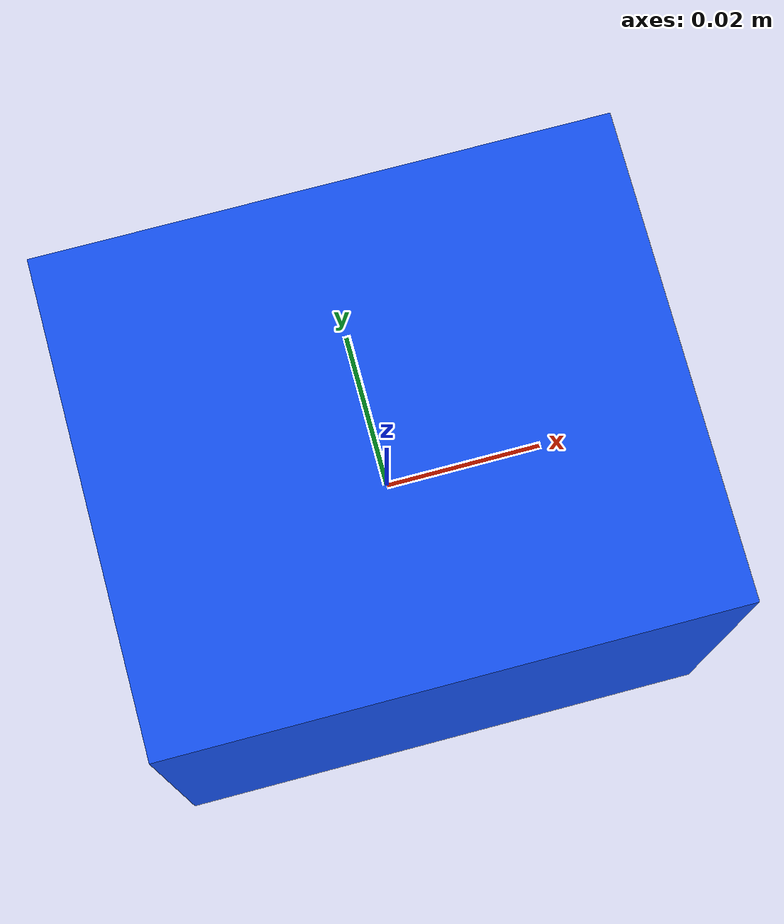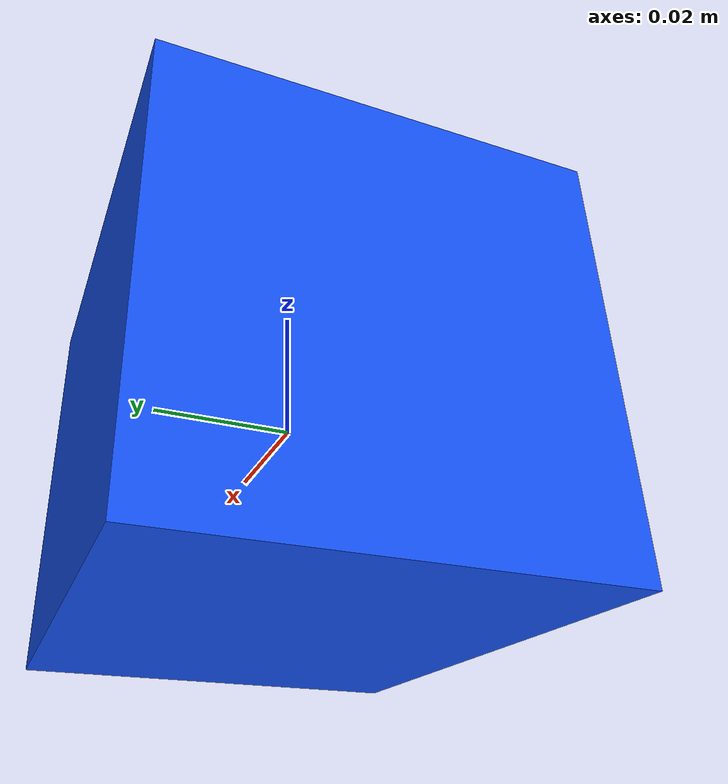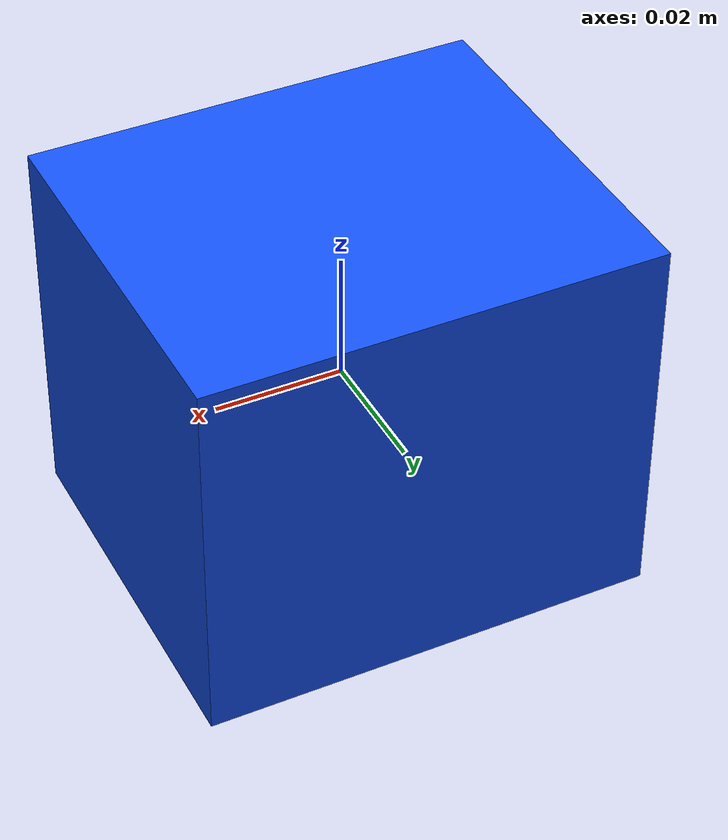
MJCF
<?xml version="1.0" encoding="utf-8"?>
<mujoco model="task2_toy_block">
  <compiler angle="radian" />
  <asset>
    <material name="toy_blue" rgba="0.08 0.32 0.95 1" specular="0.25" shininess="0.35" />
  </asset>
  <default>
    <default class="visual">
      <geom contype="0" conaffinity="0" group="1" />
    </default>
    <default class="collision">
      <geom group="0" rgba="0.08 0.32 0.95 0" solimp="0.998 0.998 0.001" solref="0.001 1" />
    </default>
    <default class="region">
      <geom group="1" contype="0" conaffinity="0" rgba="0 1 0 0" mass="0" />
    </default>
  </default>
  <worldbody>
    <body>
      <body name="object">
        <geom name="toy_visual" class="visual" type="box" size="0.035 0.03 0.03" material="toy_blue" />
        <geom name="toy_collision" class="collision" type="box" size="0.035 0.03 0.03" mass="0.12" friction="0.9 0.25 0.08" />
        <geom name="reg_bbox" class="region" type="box" pos="0 0 0" size="0.035 0.03 0.03" />
      </body>
    </body>
  </worldbody>
  <actuator />
</mujoco>
